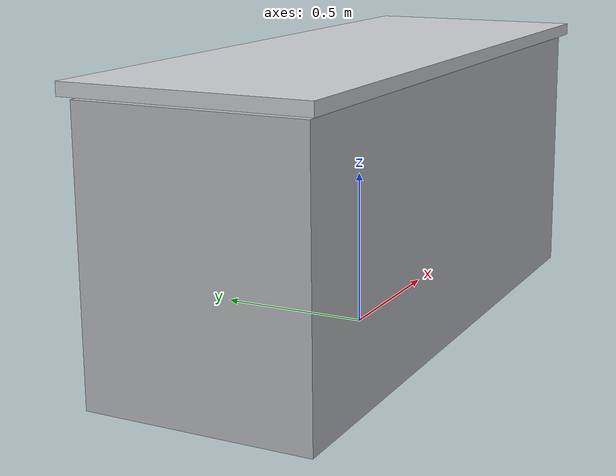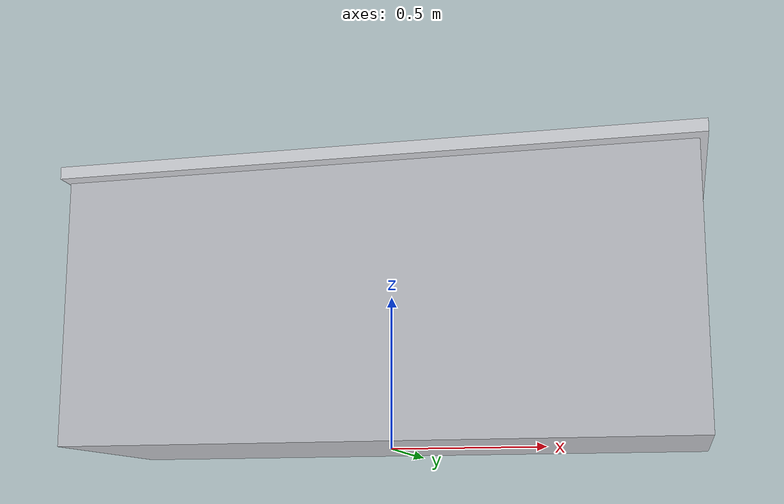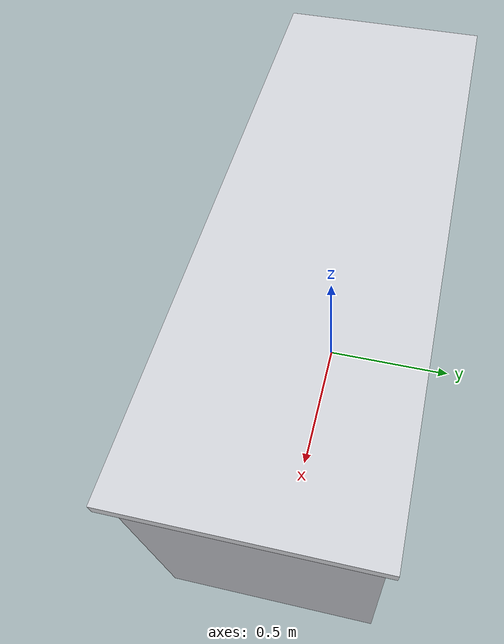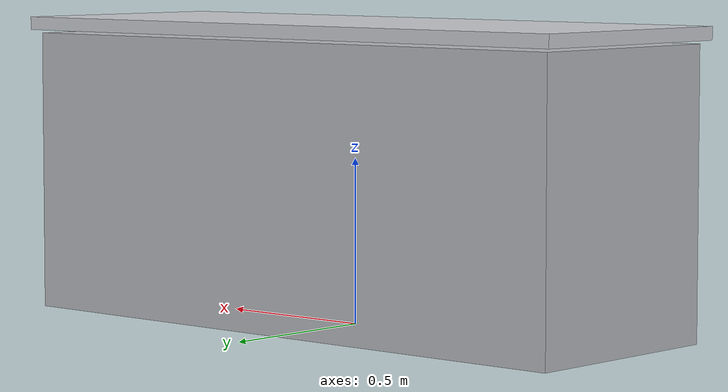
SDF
<?xml version="1.0" ?>
<!--
  kitchen_counter | Module B - Furniture
  2.0 (X) x 0.7 (Y) m, 0.9 m tall stainless prep counter. Origin: floor centre.
  R5: single box collision.
-->
<sdf version="1.6">
  <model name="kitchen_counter">
    <static>true</static>
    <link name="counter_link">
      <collision name="counter_col">
        <pose>0 0 0.45 0 0 0</pose>
        <geometry><box><size>2.0 0.7 0.9</size></box></geometry>
      </collision>
      <!-- Cabinet body -->
      <visual name="body_vis">
        <pose>0 0 0.43 0 0 0</pose>
        <geometry><box><size>2.0 0.7 0.86</size></box></geometry>
        <material><ambient>0.60 0.61 0.63 1</ambient><diffuse>0.72 0.73 0.75 1</diffuse><specular>0.55 0.55 0.57 1</specular></material>
      </visual>
      <!-- Stainless top -->
      <visual name="top_vis">
        <pose>0 0 0.89 0 0 0</pose>
        <geometry><box><size>2.05 0.75 0.04</size></box></geometry>
        <material><ambient>0.68 0.69 0.71 1</ambient><diffuse>0.80 0.81 0.83 1</diffuse><specular>0.70 0.70 0.72 1</specular></material>
      </visual>
    </link>
  </model>
</sdf>
